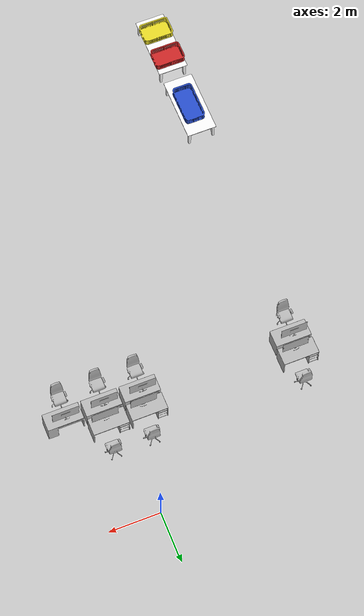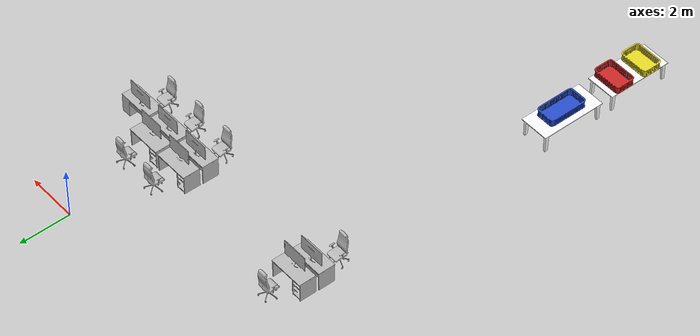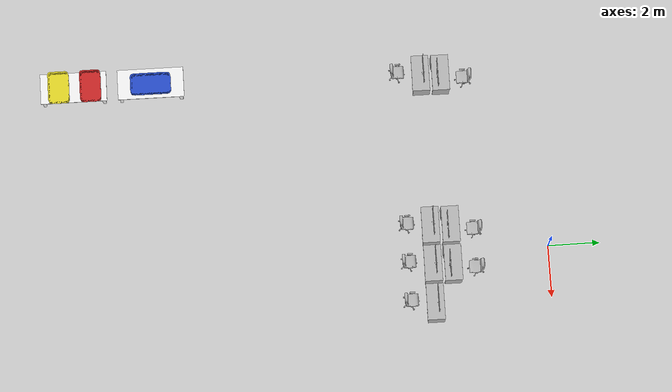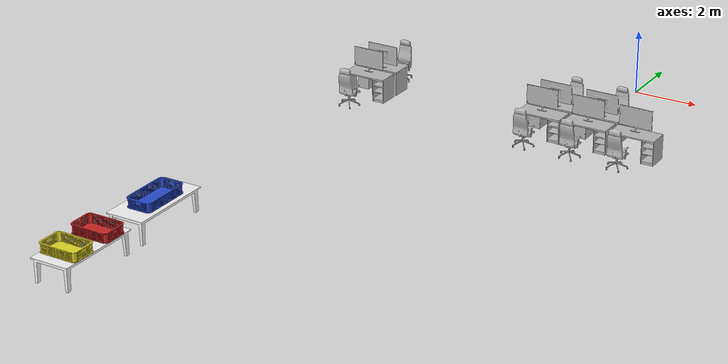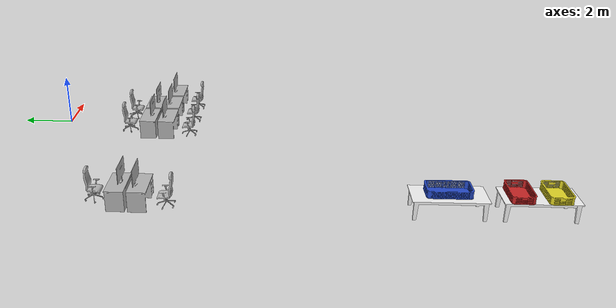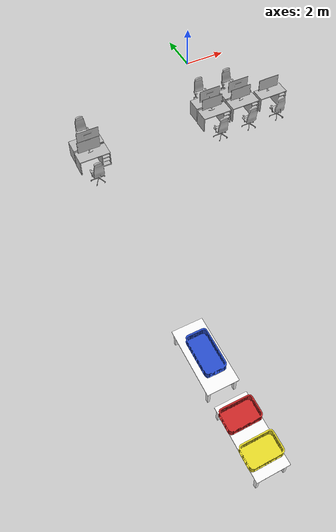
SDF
<sdf version="1.7">
 <world name="default">
  <model name="ROB_long_table_1">
   <static>1</static>
   <link name="link">
    <visual name="visual">
     <geometry>
      <mesh><uri>model://office/meshes/ROB_long_table/ROB_long_table.dae</uri><scale>1 1 1</scale></mesh>
     </geometry>
    </visual>
    <collision name="collision">
     <geometry>
      <mesh><uri>model://office/meshes/ROB_long_table/ROB_long_table.stl</uri><scale>1 1 1</scale></mesh>
     </geometry>
    </collision>
    <velocity_decay><linear>0</linear><angular>0</angular></velocity_decay>
   </link>
   <pose>-7.17267 -15.006451 0 0 -0 0</pose>
  </model>
  <model name="ROB_long_table_2">
   <static>1</static>
   <link name="link">
    <visual name="visual">
     <geometry>
      <mesh><uri>model://office/meshes/ROB_long_table/ROB_long_table.dae</uri><scale>1 1 1</scale></mesh>
     </geometry>
    </visual>
    <collision name="collision">
     <geometry>
      <mesh><uri>model://office/meshes/ROB_long_table/ROB_long_table.stl</uri><scale>1 1 1</scale></mesh>
     </geometry>
    </collision>
    <velocity_decay><linear>0</linear><angular>0</angular></velocity_decay>
   </link>
   <pose>-7.17267 -18.006451 0 0 -0 0</pose>
  </model>
  <model name="fruit_box">
   <static>1</static>
   <link name="link">
    <visual name="visual">
     <geometry><mesh><uri>model://others/meshes/fruit_box.dae</uri><scale>1 1 0.65</scale></mesh></geometry>
     <material>
      <script><uri>file://media/materials/scripts/gazebo.material</uri><name>Gazebo/Yellow</name></script>
     </material>
    </visual>
    <collision name="collision">
     <geometry><mesh><uri>model://others/meshes/fruit_box.stl</uri><scale>1 1 0.65</scale></mesh></geometry>
    </collision>
    <velocity_decay><linear>0</linear><angular>0</angular></velocity_decay>
   </link>
   <pose>-7.17267 -18.57166 0.453809 0 0 0</pose>
  </model>
  <model name="fruit_box2">
   <static>1</static>
   <link name="link">
    <visual name="visual">
     <geometry><mesh><uri>model://others/meshes/fruit_box.dae</uri><scale>1 1 0.65</scale></mesh></geometry>
     <material>
      <script><uri>file://media/materials/scripts/gazebo.material</uri><name>Gazebo/Red</name></script>
     </material>
    </visual>
    <collision name="collision">
     <geometry><mesh><uri>model://others/meshes/fruit_box.stl</uri><scale>1 1 0.65</scale></mesh></geometry>
    </collision>
    <velocity_decay><linear>0</linear><angular>0</angular></velocity_decay>
   </link>
   <pose>-7.17267 -17.33825 0.453809 0 0 0</pose>
  </model>
  <model name="fruit_box3">
   <static>1</static>
   <link name="link">
    <visual name="visual">
     <geometry><mesh><uri>model://others/meshes/fruit_box.dae</uri><scale>1.3 1 0.65</scale></mesh></geometry>
     <material>
      <script><uri>file://media/materials/scripts/gazebo.material</uri><name>Gazebo/Blue</name></script>
     </material>
    </visual>
    <collision name="collision">
     <geometry><mesh><uri>model://others/meshes/fruit_box.stl</uri><scale>1.3 1 0.65</scale></mesh></geometry>
    </collision>
    <velocity_decay><linear>0</linear><angular>0</angular></velocity_decay>
   </link>
   <pose>-7.12267 -15.0 0.453809 0 0 1.5708</pose>
  </model>
  <model name="ROB_work_station_9">
   <static>1</static>
   <link name="link">
    <visual name="visual">
     <geometry>
      <mesh><uri>model://office/meshes/ROB_work_station/ROB_work_station.dae</uri><scale>1 1 1</scale></mesh>
     </geometry>
    </visual>
    <collision name="collision">
     <geometry>
      <mesh><uri>model://office/meshes/ROB_work_station/ROB_work_station.stl</uri><scale>1 1 1</scale></mesh>
     </geometry>
    </collision>
    <velocity_decay><linear>0</linear><angular>0</angular></velocity_decay>
   </link>
   <pose>-7 -5 0 0 -0 0</pose>
  </model>
  <model name="ROB_work_station_10">
   <static>1</static>
   <link name="link">
    <visual name="visual">
     <geometry>
      <mesh><uri>model://office/meshes/ROB_work_station/ROB_work_station.dae</uri><scale>1 1 1</scale></mesh>
     </geometry>
    </visual>
    <collision name="collision">
     <geometry>
      <mesh><uri>model://office/meshes/ROB_work_station/ROB_work_station.stl</uri><scale>1 1 1</scale></mesh>
     </geometry>
    </collision>
    <velocity_decay><linear>0</linear><angular>0</angular></velocity_decay>
   </link>
   <pose>-6.9 -3.25 0 0 0 3.1416</pose>
  </model>
  <model name="ROB_work_station_11">
   <static>1</static>
   <link name="link">
    <visual name="visual">
     <geometry>
      <mesh><uri>model://office/meshes/ROB_work_station/ROB_work_station.dae</uri><scale>1 1 1</scale></mesh>
     </geometry>
    </visual>
    <collision name="collision">
     <geometry>
      <mesh><uri>model://office/meshes/ROB_work_station/ROB_work_station.stl</uri><scale>1 1 1</scale></mesh>
     </geometry>
    </collision>
    <velocity_decay><linear>0</linear><angular>0</angular></velocity_decay>
   </link>
   <pose>-1 -5 0 0 -0 0</pose>
  </model>
  <model name="ROB_work_station_12">
   <static>1</static>
   <link name="link">
    <visual name="visual">
     <geometry>
      <mesh><uri>model://office/meshes/ROB_work_station/ROB_work_station.dae</uri><scale>1 1 1</scale></mesh>
     </geometry>
    </visual>
    <collision name="collision">
     <geometry>
      <mesh><uri>model://office/meshes/ROB_work_station/ROB_work_station.stl</uri><scale>1 1 1</scale></mesh>
     </geometry>
    </collision>
    <velocity_decay><linear>0</linear><angular>0</angular></velocity_decay>
   </link>
   <pose>-0.9 -3.25 0 0 0 3.1416</pose>
  </model>
  <model name="ROB_work_station_13">
   <static>1</static>
   <link name="link">
    <visual name="visual">
     <geometry>
      <mesh><uri>model://office/meshes/ROB_work_station/ROB_work_station.dae</uri><scale>1 1 1</scale></mesh>
     </geometry>
    </visual>
    <collision name="collision">
     <geometry>
      <mesh><uri>model://office/meshes/ROB_work_station/ROB_work_station.stl</uri><scale>1 1 1</scale></mesh>
     </geometry>
    </collision>
    <velocity_decay><linear>0</linear><angular>0</angular></velocity_decay>
   </link>
   <pose>0.5 -5 0 0 -0 0</pose>
  </model>
  <model name="ROB_work_station_14">
   <static>1</static>
   <link name="link">
    <visual name="visual">
     <geometry>
      <mesh><uri>model://office/meshes/ROB_work_station/ROB_work_station.dae</uri><scale>1 1 1</scale></mesh>
     </geometry>
    </visual>
    <collision name="collision">
     <geometry>
      <mesh><uri>model://office/meshes/ROB_work_station/ROB_work_station.stl</uri><scale>1 1 1</scale></mesh>
     </geometry>
    </collision>
    <velocity_decay><linear>0</linear><angular>0</angular></velocity_decay>
   </link>
   <pose>0.6 -3.25 0 0 0 3.1416</pose>
  </model>
  <model name="ROB_work_station_15">
   <static>1</static>
   <link name="link">
    <visual name="visual">
     <geometry>
      <mesh><uri>model://office/meshes/ROB_work_station/ROB_work_station.dae</uri><scale>1 1 1</scale></mesh>
     </geometry>
    </visual>
    <collision name="collision">
     <geometry>
      <mesh><uri>model://office/meshes/ROB_work_station/ROB_work_station.stl</uri><scale>1 1 1</scale></mesh>
     </geometry>
    </collision>
    <velocity_decay><linear>0</linear><angular>0</angular></velocity_decay>
   </link>
   <pose>2 -5 0 0 -0 0</pose>
  </model>
 </world>
</sdf>
